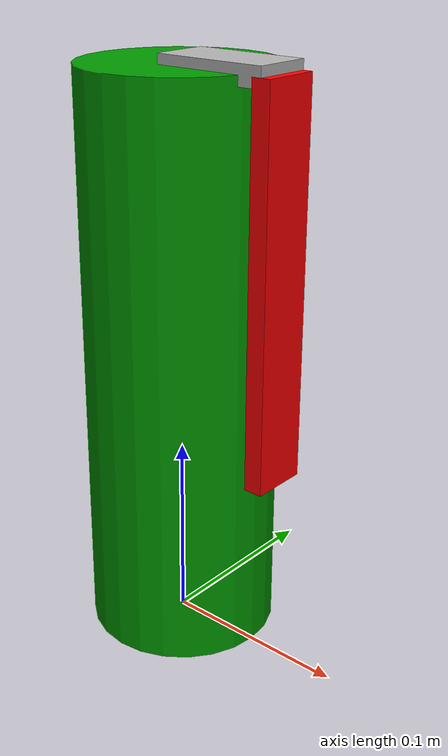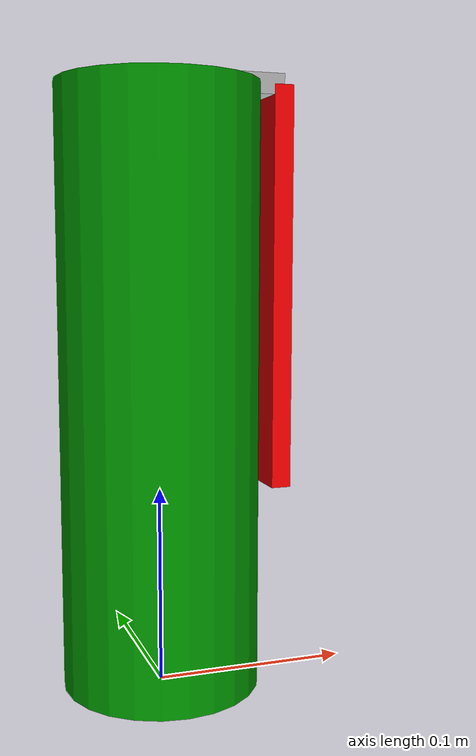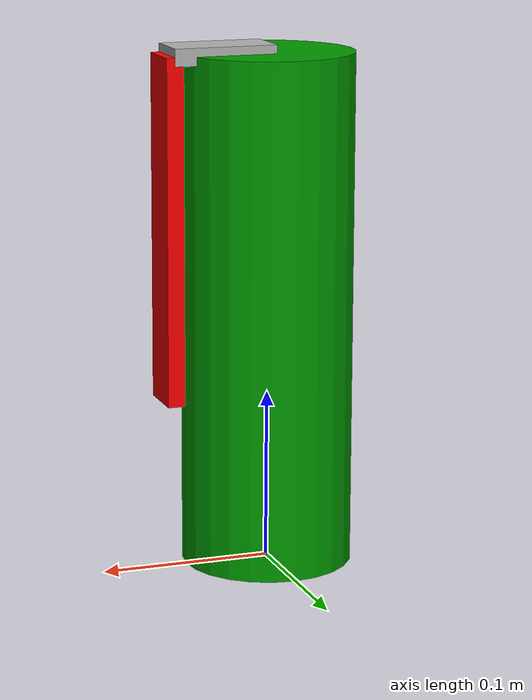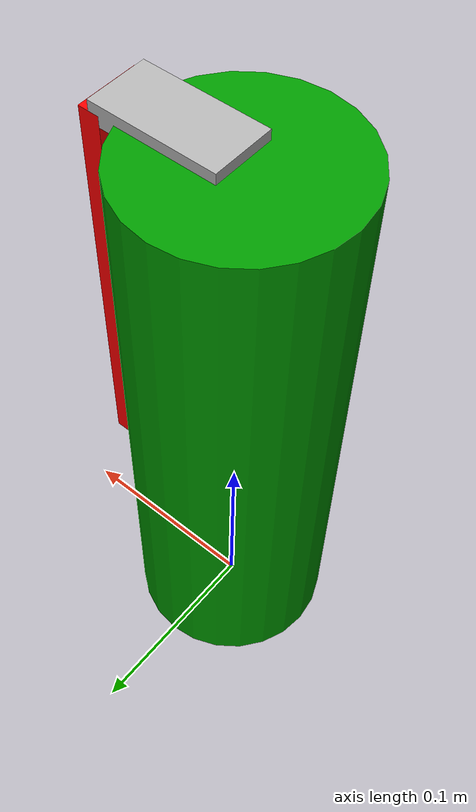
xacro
<?xml version="1.0"?>
<robot name="rotary_inverted_pendulum" xmlns:xacro="http://www.ros.org/wiki/xacro">

    <xacro:property name = "base_height" value="0.3" />
    <xacro:property name = "arm_length" value="0.06 " />
    <xacro:property name = "pendulum_length" value="0.2 " />

    <material name="grey">
        <color rgba="0.7 0.7 0.7 1"/>
    </material>

    <material name="green">
        <color rgba="0 0.6 0 1"/>
    </material>

    <material name="red">
        <color rgba="1 0 0 1"/>
    </material>

    <link name="base_link">
        <visual>
            <geometry>
                <cylinder radius="0.05" length="${base_height}"/>
            </geometry>
            <origin xyz="0 0 ${base_height / 2}" rpy="0 0 0"/>
            <material name="green"/>
        </visual>
    </link>

    <link name="arm_link">
        <visual>
            <geometry>
                <box size="${arm_length} 0.03 0.01"/>
            </geometry>
            <origin xyz="${arm_length / 2} 0 0" rpy="0 0 0"/>
            <material name="grey"/>
        </visual>
    </link>

    <link name="pendulum_link">
        <visual>
            <geometry>
                <box size="${pendulum_length} 0.03 0.01"/>
            </geometry>
            <origin xyz="${pendulum_length / 2}  0 0" rpy="0 0 0"/>
            <material name="red"/>
        </visual>
    </link>

    <joint name="base_arm_joint" type="revolute">
        <parent link="base_link"/>
        <child link="arm_link"/>
        <origin xyz="0 0 ${base_height}" rpy="0 0 0"/>
        <axis xyz="0 0 1"/>
        <limit effort="10" lower="-${pi}" upper="${pi}" velocity="1.0"/>
    </joint>

    <joint name="arm_pendulum_joint" type="revolute">
        <parent link="arm_link"/>
        <child link="pendulum_link"/>
        <origin xyz="${arm_length} 0 0" rpy="0 ${pi / 2.0} 0"/>
        <axis xyz="0 0 1"/>
        <limit effort="10" lower="-${pi}" upper="${pi}" velocity="1.0"/>
    </joint>
</robot>
